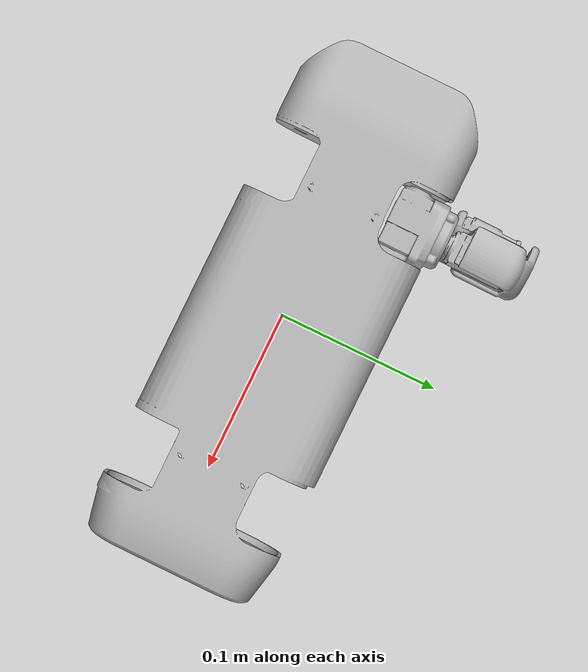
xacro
<?xml version="1.0" ?>
<robot name="quadruped-legged" xmlns:xacro="http://www.ros.org/wiki/xacro">

<xacro:macro name="quadruped-legged" params="prefix load_meta:=true">

<xacro:if value="${load_meta}">
  <xacro:include filename="$(find quadruped-legged_description)/urdf/materials.xacro" />
  <xacro:include filename="$(find quadruped-legged_description)/urdf/quadruped-legged.trans" />
  <xacro:include filename="$(find quadruped-legged_description)/urdf/quadruped-legged.gazebo" />
</xacro:if>

<material name="quadruped-legged_silver">
  <color rgba="0.700 0.700 0.700 1.000"/>
</material>

<link name="${prefix}base_link">
  <visual>
    <origin xyz="0 0 0" rpy="0 0 0"/>
    <geometry>
      <mesh filename="package://quadruped-legged_description/meshes/base_link.stl" scale="0.001 0.001 0.001"/>
    </geometry>
    <material name="quadruped-legged_silver"/>
  </visual>
  <collision>
    <origin xyz="0 0 0" rpy="0 0 0"/>
    <geometry>
      <mesh filename="package://quadruped-legged_description/meshes/base_link.stl" scale="0.001 0.001 0.001"/>
    </geometry>
  </collision>
</link>

<link name="${prefix}fr_hip">
  <inertial>
    <origin xyz="0.022406190093623463 0.00586523166196927 -0.011025872454559518" rpy="0 0 0"/>
    <mass value="0.4402757419432753"/>
    <inertia ixx="0.000129" iyy="0.000143" izz="9.8e-05" ixy="-1e-06" iyz="0.0" ixz="1e-06"/>
  </inertial>
  <visual>
    <origin xyz="0 0 0" rpy="0 0 0"/>
    <geometry>
      <mesh filename="package://quadruped-legged_description/meshes/fr_hip.stl" scale="0.001 0.001 0.001"/>
    </geometry>
    <material name="quadruped-legged_silver"/>
  </visual>
  <collision>
    <origin xyz="0 0 0" rpy="0 0 0"/>
    <geometry>
      <mesh filename="package://quadruped-legged_description/meshes/fr_hip.stl" scale="0.001 0.001 0.001"/>
    </geometry>
  </collision>
</link>

<link name="${prefix}fr_leg">
  <inertial>
    <origin xyz="-0.10447162313529515 0.06770905838104065 -0.006451266657444209" rpy="0 0 0"/>
    <mass value="0.8819417369199037"/>
    <inertia ixx="0.001238" iyy="0.001149" izz="0.000203" ixy="2e-06" iyz="4.9e-05" ixz="-1.1e-05"/>
  </inertial>
  <visual>
    <origin xyz="0 0 0" rpy="0 0 0"/>
    <geometry>
      <mesh filename="package://quadruped-legged_description/meshes/fr_leg.stl" scale="0.001 0.001 0.001"/>
    </geometry>
    <material name="quadruped-legged_silver"/>
  </visual>
  <collision>
    <origin xyz="0 0 0" rpy="0 0 0"/>
    <geometry>
      <mesh filename="package://quadruped-legged_description/meshes/fr_leg.stl" scale="0.001 0.001 0.001"/>
    </geometry>
  </collision>
</link>

<link name="${prefix}fr_foot">
  <inertial>
    <origin xyz="-0.07886008449279897 0.08956646074386246 -0.012679618798696626" rpy="0 0 0"/>
    <mass value="0.4701549157206575"/>
    <inertia ixx="0.00096" iyy="0.000946" izz="7e-05" ixy="-3e-06" iyz="-1.6e-05" ixz="-1.7e-05"/>
  </inertial>
  <visual>
    <origin xyz="0 0 0" rpy="0 0 0"/>
    <geometry>
      <mesh filename="package://quadruped-legged_description/meshes/fr_foot.stl" scale="0.001 0.001 0.001"/>
    </geometry>
    <material name="quadruped-legged_silver"/>
  </visual>
  <collision>
    <origin xyz="0 0 0" rpy="0 0 0"/>
    <geometry>
      <mesh filename="package://quadruped-legged_description/meshes/fr_foot.stl" scale="0.001 0.001 0.001"/>
    </geometry>
  </collision>
</link>

<joint name="${prefix}fr_i_hip" type="continuous">
  <origin xyz="-0.102 0.040896 0.034274" rpy="0.0 -0.0 0.0"/>
  <parent link="${prefix}base_link"/>
  <child link="${prefix}fr_hip"/>
  <axis xyz="1.0 0.0 0.0"/>
</joint>

<joint name="${prefix}fr_o_hip" type="continuous">
  <origin xyz="0.022207 0.027211 -0.011113" rpy="0.0 -0.0 0.0"/>
  <parent link="${prefix}fr_hip"/>
  <child link="${prefix}fr_leg"/>
  <axis xyz="-0.0 1.0 0.0"/>
</joint>

<joint name="${prefix}fr_knee" type="continuous">
  <origin xyz="-0.01513 0.0022 -0.107733" rpy="0.0 -0.0 0.0"/>
  <parent link="${prefix}fr_leg"/>
  <child link="${prefix}fr_foot"/>
  <axis xyz="-0.0 1.0 0.0"/>
</joint>

</xacro:macro>

<xacro:quadruped-legged prefix="" load_meta="false" />

</robot>
